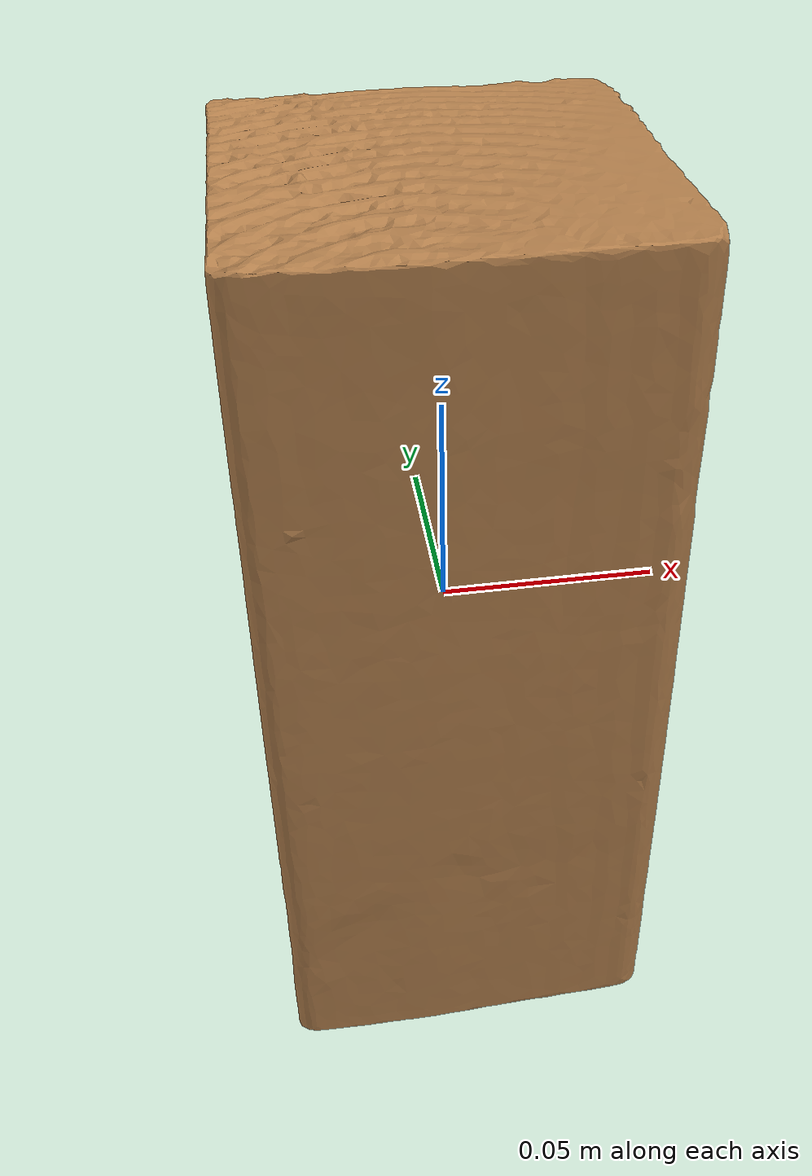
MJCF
<mujoco model="wood_block">
  <compiler angle="radian" />

  <asset>
    <mesh name="wood_block_visual_mesh" file="wood_block/textured.obj" />
    <mesh name="wood_block_collision_mesh_0" file="wood_block/textured_coacd_0.stl" />
    <texture name="wood_block_texture" type="2d" file="wood_block/texture_map.png" />
    <material name="wood_block_material" texture="wood_block_texture" />
  </asset>

  <worldbody>
    <body name="wood_block" pos="0 0 0" euler="0 0 0">
      <freejoint name="wood_block_joint" />
      <geom name="wood_block_visual_geom" type="mesh" mesh="wood_block_visual_mesh" material="wood_block_material" pos="-0.0 -0.0 -0.0" euler="0 0 0" contype="0" conaffinity="0" group="0" />
      <geom name="wood_block_collision_geom_0" type="mesh" mesh="wood_block_collision_mesh_0" pos="-0.0 -0.0 -0.0" euler="0 0 0" contype="1" conaffinity="1" group="3" />
      <inertial pos="0 0 0" euler="0 0 0" mass="0.729" diaginertia="0.001 0.001 0.001" />
    </body>
  </worldbody>
</mujoco>
